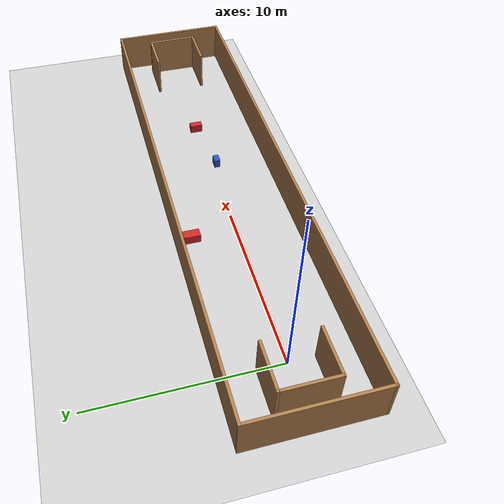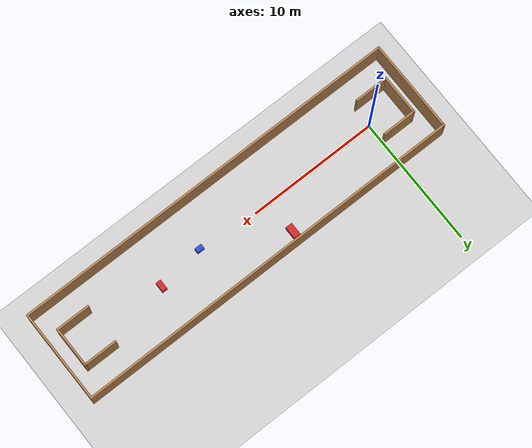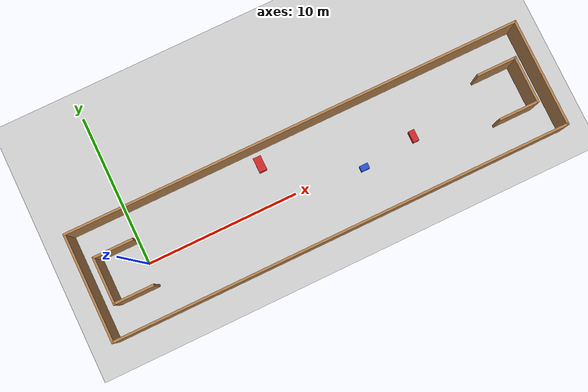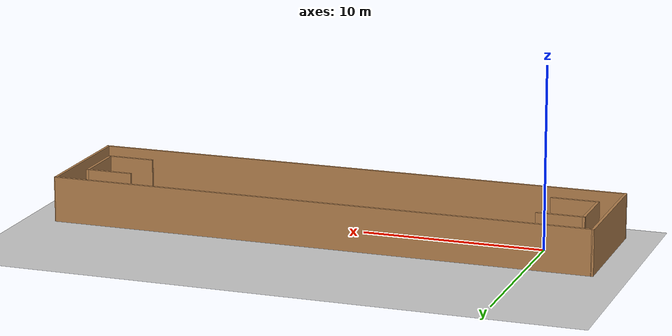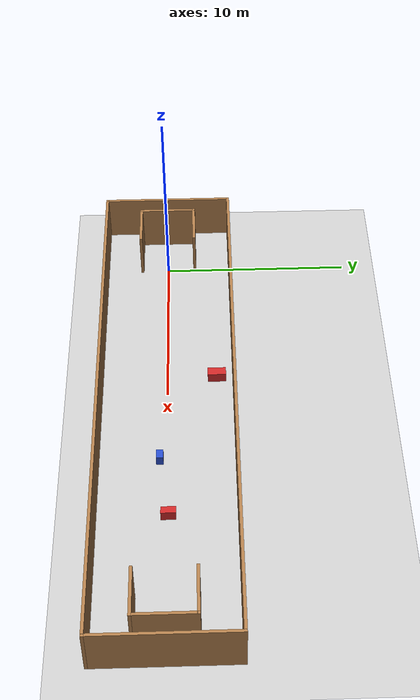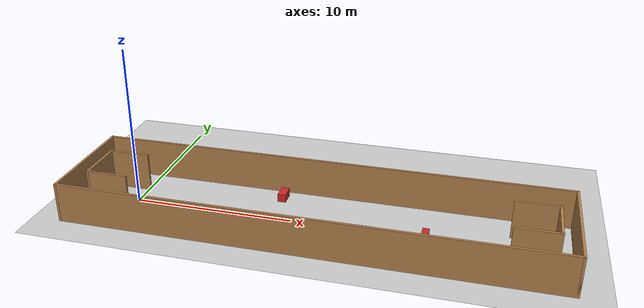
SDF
<sdf version="1.7">
 <world name="default">
  <light name="sun" type="directional">
   <pose>0 0 10 0 -0 0</pose>
   <diffuse>0.8 0.8 0.8 1</diffuse>
   <specular>0.2 0.2 0.2 1</specular>
   <attenuation>
    <range>1000</range>
    <constant>0.9</constant>
    <linear>0.01</linear>
    <quadratic>0.001</quadratic>
   </attenuation>
   <direction>-0.5 0.1 -0.9</direction>
   <spot><inner_angle>0</inner_angle><outer_angle>0</outer_angle><falloff>0</falloff></spot>
  </light>
  <model name="ground_plane">
   <static>1</static>
   <link name="link">
    <collision name="collision">
     <geometry><plane><normal>0 0 1</normal><size>100 100</size></plane></geometry>
     <surface>
      <contact><collide_bitmask>65535</collide_bitmask></contact>
      <friction><ode><mu>100</mu><mu2>50</mu2></ode></friction>
     </surface>
    </collision>
    <visual name="visual">
     <cast_shadows>0</cast_shadows>
     <geometry><plane><normal>0 0 1</normal><size>100 100</size></plane></geometry>
     <material>
      <script><uri>file://media/materials/scripts/gazebo.material</uri><name>Gazebo/Grey</name></script>
     </material>
    </visual>
   </link>
  </model>
  <gravity>0 0 -9.8</gravity>
  <magnetic_field>6e-06 2.3e-05 -4.2e-05</magnetic_field>
  <atmosphere type="adiabatic"/>
  <physics type="ode">
   <max_step_size>0.001</max_step_size>
   <real_time_factor>1</real_time_factor>
   <real_time_update_rate>1000</real_time_update_rate>
  </physics>
  <scene><ambient>0.4 0.4 0.4 1</ambient><background>0.7 0.7 0.7 1</background><shadows>1</shadows></scene>
  <spherical_coordinates>
   <surface_model>EARTH_WGS84</surface_model>
   <latitude_deg>0</latitude_deg>
   <longitude_deg>0</longitude_deg>
   <elevation>0</elevation>
   <heading_deg>0</heading_deg>
  </spherical_coordinates>
  <model name="my_base_walls">
   <link name="Wall_0">
    <collision name="Wall_0_Collision">
     <geometry><box><size>7.15 0.15 2.5</size></box></geometry>
     <pose>0 0 1.25 0 -0 0</pose>
    </collision>
    <visual name="Wall_0_Visual">
     <pose>0 0 1.25 0 -0 0</pose>
     <geometry><box><size>7.15 0.15 2.5</size></box></geometry>
     <material>
      <script><uri>file://media/materials/scripts/gazebo.material</uri><name>Gazebo/Wood</name></script>
      <ambient>1 1 1 1</ambient>
     </material>
     <meta><layer>0</layer></meta>
    </visual>
    <pose>-15 0 0 0 -0 1.5708</pose>
   </link>
   <link name="Wall_10">
    <collision name="Wall_10_Collision">
     <geometry><box><size>2.65 0.15 2.5</size></box></geometry>
     <pose>0 0 1.25 0 -0 0</pose>
    </collision>
    <visual name="Wall_10_Visual">
     <pose>0 0 1.25 0 -0 0</pose>
     <geometry><box><size>2.65 0.15 2.5</size></box></geometry>
     <material>
      <script><uri>file://media/materials/scripts/gazebo.material</uri><name>Gazebo/Wood</name></script>
      <ambient>1 1 1 1</ambient>
     </material>
     <meta><layer>0</layer></meta>
    </visual>
    <pose>-12.75 -1.5 0 0 -0 0</pose>
   </link>
   <link name="Wall_12">
    <collision name="Wall_12_Collision">
     <geometry><box><size>2.65 0.15 2.5</size></box></geometry>
     <pose>0 0 1.25 0 -0 0</pose>
    </collision>
    <visual name="Wall_12_Visual">
     <pose>0 0 1.25 0 -0 0</pose>
     <geometry><box><size>2.65 0.15 2.5</size></box></geometry>
     <material>
      <script><uri>file://media/materials/scripts/gazebo.material</uri><name>Gazebo/Wood</name></script>
      <ambient>1 1 1 1</ambient>
     </material>
     <meta><layer>0</layer></meta>
    </visual>
    <pose>-12.75 1.5 0 0 -0 0</pose>
   </link>
   <link name="Wall_14">
    <collision name="Wall_14_Collision">
     <geometry><box><size>3.15 0.15 2.5</size></box></geometry>
     <pose>0 0 1.25 0 -0 0</pose>
    </collision>
    <visual name="Wall_14_Visual">
     <pose>0 0 1.25 0 -0 0</pose>
     <geometry><box><size>3.15 0.15 2.5</size></box></geometry>
     <material>
      <script><uri>file://media/materials/scripts/gazebo.material</uri><name>Gazebo/Wood</name></script>
      <ambient>1 1 1 1</ambient>
     </material>
     <meta><layer>0</layer></meta>
    </visual>
    <pose>14 0 0 0 -0 -1.5708</pose>
   </link>
   <link name="Wall_15">
    <collision name="Wall_15_Collision">
     <geometry><box><size>2.65 0.15 2.5</size></box></geometry>
     <pose>0 0 1.25 0 -0 0</pose>
    </collision>
    <visual name="Wall_15_Visual">
     <pose>0 0 1.25 0 -0 0</pose>
     <geometry><box><size>2.65 0.15 2.5</size></box></geometry>
     <material>
      <script><uri>file://media/materials/scripts/gazebo.material</uri><name>Gazebo/Wood</name></script>
      <ambient>1 1 1 1</ambient>
     </material>
     <meta><layer>0</layer></meta>
    </visual>
    <pose>12.75 -1.5 0 0 -0 3.14159</pose>
   </link>
   <link name="Wall_17">
    <collision name="Wall_17_Collision">
     <geometry><box><size>2.65 0.15 2.5</size></box></geometry>
     <pose>0 0 1.25 0 -0 0</pose>
    </collision>
    <visual name="Wall_17_Visual">
     <pose>0 0 1.25 0 -0 0</pose>
     <geometry><box><size>2.65 0.15 2.5</size></box></geometry>
     <material>
      <script><uri>file://media/materials/scripts/gazebo.material</uri><name>Gazebo/Wood</name></script>
      <ambient>1 1 1 1</ambient>
     </material>
     <meta><layer>0</layer></meta>
    </visual>
    <pose>12.75 1.5 0 0 -0 3.14159</pose>
   </link>
   <link name="Wall_2">
    <collision name="Wall_2_Collision">
     <geometry><box><size>30.15 0.15 2.5</size></box></geometry>
     <pose>0 0 1.25 0 -0 0</pose>
    </collision>
    <visual name="Wall_2_Visual">
     <pose>0 0 1.25 0 -0 0</pose>
     <geometry><box><size>30.15 0.15 2.5</size></box></geometry>
     <material>
      <script><uri>file://media/materials/scripts/gazebo.material</uri><name>Gazebo/Wood</name></script>
      <ambient>1 1 1 1</ambient>
     </material>
     <meta><layer>0</layer></meta>
    </visual>
    <pose>-0 -3.5 0 0 -0 0</pose>
   </link>
   <link name="Wall_4">
    <collision name="Wall_4_Collision">
     <geometry><box><size>30.15 0.15 2.5</size></box></geometry>
     <pose>0 0 1.25 0 -0 0</pose>
    </collision>
    <visual name="Wall_4_Visual">
     <pose>0 0 1.25 0 -0 0</pose>
     <geometry><box><size>30.15 0.15 2.5</size></box></geometry>
     <material>
      <script><uri>file://media/materials/scripts/gazebo.material</uri><name>Gazebo/Wood</name></script>
      <ambient>1 1 1 1</ambient>
     </material>
     <meta><layer>0</layer></meta>
    </visual>
    <pose>-0 3.5 0 0 -0 0</pose>
   </link>
   <link name="Wall_6">
    <collision name="Wall_6_Collision">
     <geometry><box><size>7.15 0.15 2.5</size></box></geometry>
     <pose>0 0 1.25 0 -0 0</pose>
    </collision>
    <visual name="Wall_6_Visual">
     <pose>0 0 1.25 0 -0 0</pose>
     <geometry><box><size>7.15 0.15 2.5</size></box></geometry>
     <material>
      <script><uri>file://media/materials/scripts/gazebo.material</uri><name>Gazebo/Wood</name></script>
      <ambient>1 1 1 1</ambient>
     </material>
     <meta><layer>0</layer></meta>
    </visual>
    <pose>15 0 0 0 -0 -1.5708</pose>
   </link>
   <link name="Wall_9">
    <collision name="Wall_9_Collision">
     <geometry><box><size>3.15 0.15 2.5</size></box></geometry>
     <pose>0 0 1.25 0 -0 0</pose>
    </collision>
    <visual name="Wall_9_Visual">
     <pose>0 0 1.25 0 -0 0</pose>
     <geometry><box><size>3.15 0.15 2.5</size></box></geometry>
     <material>
      <script><uri>file://media/materials/scripts/gazebo.material</uri><name>Gazebo/Wood</name></script>
      <ambient>1 1 1 1</ambient>
     </material>
     <meta><layer>0</layer></meta>
    </visual>
    <pose>-14 0 0 0 -0 -1.5708</pose>
   </link>
   <static>1</static>
   <pose>11.5 0 0 0 -0 0</pose>
  </model>
  <model name="moving_box_1">
   <pose>8.789552796796539 2.5944868005094426 0 0 0 0</pose>
   <link name="link">
    <collision name="collision">
     <geometry><box><size>0.5161197733384812 0.9612721465999141 1</size></box></geometry>
     <surface><friction><ode><mu>0.1</mu><mu2>0.1</mu2></ode></friction></surface>
    </collision>
    <visual name="visual">
     <geometry><box><size>0.5161197733384812 0.9612721465999141 1</size></box></geometry>
     <material>
      <script><uri>file://media/materials/scripts/gazebo.material</uri><name>Gazebo/Red</name></script>
     </material>
    </visual>
   </link>
   <plugin name="move_box_plugin_1" filename="/home/otonom/fgm_ws/devel/lib/libmove_box_plugin.so">
    <velocity>0.17398410642158135 -0.15274175020742392 0</velocity>
   </plugin>
  </model>
  <model name="moving_box_2">
   <pose>18.145415089319574 0.06500090153282923 0 0 0 0</pose>
   <link name="link">
    <collision name="collision">
     <geometry><box><size>0.39763039843557413 0.7456517151770561 1</size></box></geometry>
     <surface><friction><ode><mu>0.1</mu><mu2>0.1</mu2></ode></friction></surface>
    </collision>
    <visual name="visual">
     <geometry><box><size>0.39763039843557413 0.7456517151770561 1</size></box></geometry>
     <material>
      <script><uri>file://media/materials/scripts/gazebo.material</uri><name>Gazebo/Red</name></script>
     </material>
    </visual>
   </link>
   <plugin name="move_box_plugin_2" filename="/home/otonom/fgm_ws/devel/lib/libmove_box_plugin.so">
    <velocity>-0.1415964450133843 -0.1275560222202327 0</velocity>
   </plugin>
  </model>
  <model name="moving_box_3">
   <pose>14.541074695385516 -0.37978577062442165 0 0 0 0</pose>
   <link name="link">
    <collision name="collision">
     <geometry><box><size>0.547668276752477 0.3575758593849365 1</size></box></geometry>
     <surface><friction><ode><mu>0.1</mu><mu2>0.1</mu2></ode></friction></surface>
    </collision>
    <visual name="visual">
     <geometry><box><size>0.547668276752477 0.3575758593849365 1</size></box></geometry>
     <material>
      <script><uri>file://media/materials/scripts/gazebo.material</uri><name>Gazebo/Blue</name></script>
     </material>
    </visual>
   </link>
   <plugin name="move_box_plugin_3" filename="/home/otonom/fgm_ws/devel/lib/libmove_box_plugin.so">
    <velocity>0 0 0</velocity>
   </plugin>
  </model>
 </world>
</sdf>
